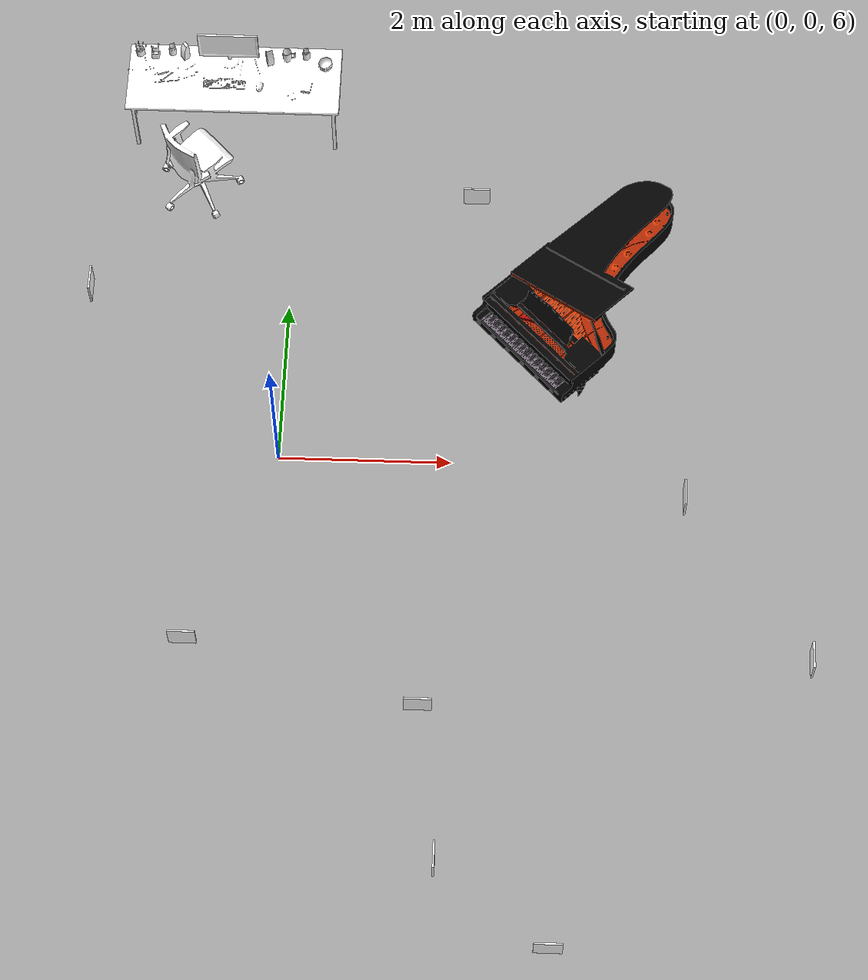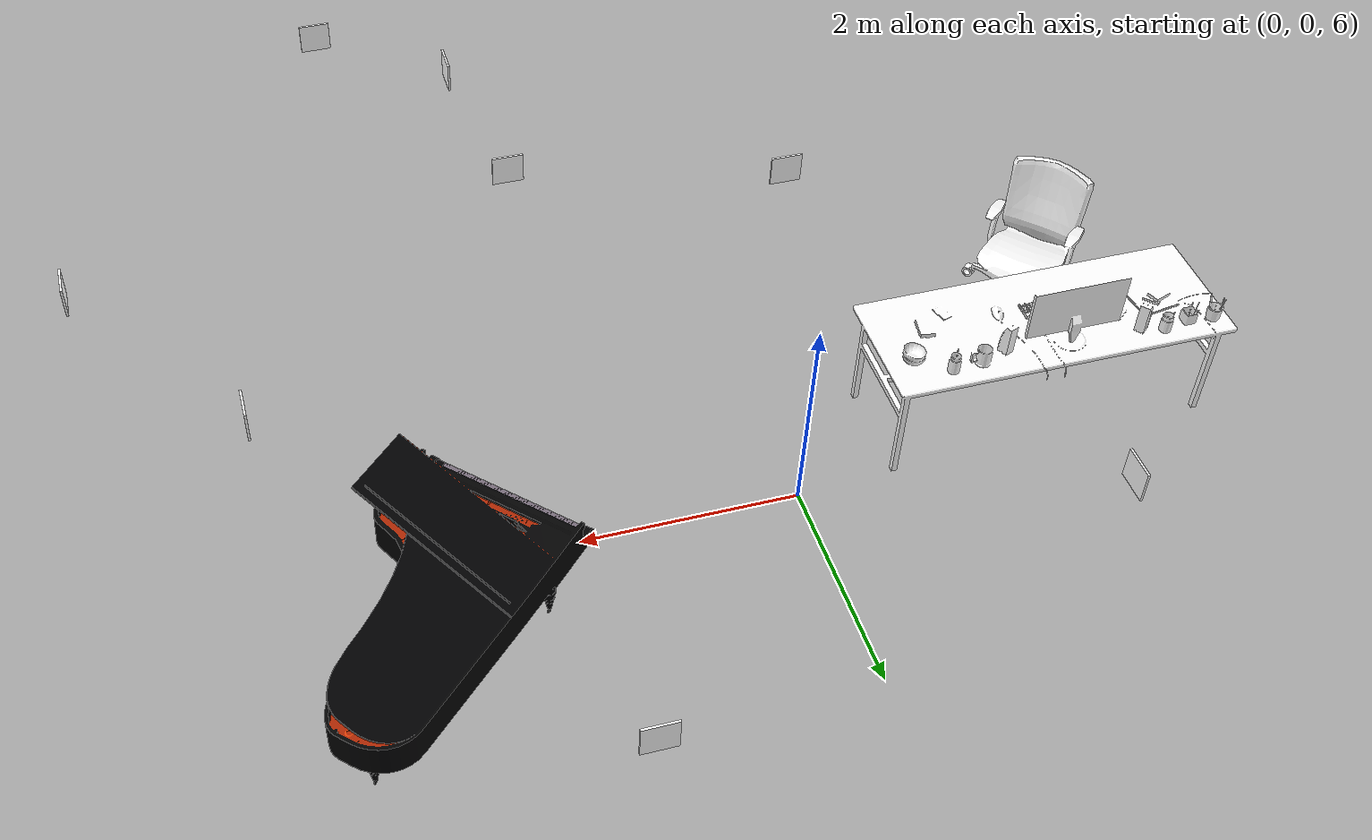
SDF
<sdf version="1.9">
 <world name="default">
  <physics name="1ms" type="ignored">
   <dart><collision_detector>bullet</collision_detector></dart>
   <max_step_size>0.001</max_step_size>
   <real_time_factor>1.0</real_time_factor>
  </physics>
  <plugin filename="gz-sim-physics-system" name="gz::sim::systems::Physics"/>
  <plugin filename="gz-sim-sensors-system" name="gz::sim::systems::Sensors">
   <render_engine>ogre2</render_engine>
  </plugin>
  <plugin filename="gz-sim-user-commands-system" name="gz::sim::systems::UserCommands"/>
  <plugin filename="gz-sim-scene-broadcaster-system" name="gz::sim::systems::SceneBroadcaster"/>
  <plugin filename="gz-sim-buoyancy-system" name="gz::sim::systems::Buoyancy">
   <graded_buoyancy>
    <default_density>1000</default_density>
    <density_change><above_depth>0</above_depth><density>1</density></density_change>
   </graded_buoyancy>
   <enable>Tethys</enable>
  </plugin>
  <plugin filename="gz-sim-dvl-system" name="gz::sim::systems::DopplerVelocityLogSystem"/>
  <gravity>0 0 -9.8</gravity>
  <scene><ambient>1 1 1</ambient><grid>false</grid></scene>
  <light type="directional" name="sun">
   <pose>0 0 20 -1.3 0 0.5</pose>
   <diffuse>0.8 0.8 0.8 1</diffuse>
   <specular>0.01 0.01 0.01 1</specular>
   <intensity>2</intensity>
   <visualize>false</visualize>
  </light>
  <light type="point" name="point_light">
   <pose>0.73 0.09 8.77 0 0 0</pose>
   <diffuse>1 1 1 1</diffuse>
   <specular>.01 .01 .01 1</specular>
   <attenuation>
    <range>20</range>
    <linear>0.2</linear>
    <constant>0.8</constant>
    <quadratic>0.01</quadratic>
   </attenuation>
   <visualize>false</visualize>
  </light>
  <light type="point" name="point_light_01">
   <pose>3.482 -4.28 8.87 0 0 0</pose>
   <diffuse>1 1 1 1</diffuse>
   <specular>0.01 0.01 0.01 1</specular>
   <attenuation>
    <range>10</range>
    <linear>0.5</linear>
    <constant>0.8</constant>
    <quadratic>0.001</quadratic>
   </attenuation>
   <cast_shadows>false</cast_shadows>
   <visualize>false</visualize>
  </light>
  <light type="point" name="point_light_02">
   <pose>0.13 0.46 11.60 0 0 0</pose>
   <diffuse>1 1 1 1</diffuse>
   <specular>0.01 0.01 0.01 1</specular>
   <attenuation>
    <range>10</range>
    <linear>0.2</linear>
    <constant>0.5</constant>
    <quadratic>0.001</quadratic>
   </attenuation>
   <cast_shadows>false</cast_shadows>
   <visualize>false</visualize>
  </light>
  <light type="point" name="point_light_03">
   <pose>4.27 -1.27 11.21 0 0 0</pose>
   <diffuse>1 1 1 1</diffuse>
   <specular>0.01 0.01 0.01 1</specular>
   <attenuation>
    <range>10</range>
    <linear>0.5</linear>
    <constant>0.8</constant>
    <quadratic>0.001</quadratic>
   </attenuation>
   <cast_shadows>false</cast_shadows>
   <visualize>false</visualize>
  </light>
  <light type="point" name="point_light_04">
   <pose>-0.31 -3.78 8.61 0 0 0</pose>
   <diffuse>1 1 1 1</diffuse>
   <specular>.01 .01 .01 1</specular>
   <attenuation>
    <range>10</range>
    <linear>0.5</linear>
    <constant>0.8</constant>
    <quadratic>0.001</quadratic>
   </attenuation>
   <cast_shadows>false</cast_shadows>
   <visualize>false</visualize>
  </light>
  <include><pose>-0.39 2.31 9.48 0 0 -1.57</pose><name>Desk</name><uri>model://Desk</uri></include>
  <include>
   <pose>-0.74 1.45 9.48 0 0 -0.81</pose>
   <name>Office_Chair</name>
   <uri>model://Office_Chair</uri>
  </include>
  <include><pose>2.98 0.85 6.91 0 0 -2.37</pose><name>Piano</name><uri>model://Piano</uri></include>
  <include><name>posAprilTags</name><uri>model://posAprilTags</uri></include>
  <model name="boundary">
   <static>true</static>
   <link name="link">
    <collision name="x">
     <pose>3000 0 0 0 0 0</pose>
     <geometry><box><size>1 6000 6000</size></box></geometry>
    </collision>
    <collision name="y">
     <pose>0 3000 0 0 0 0</pose>
     <geometry><box><size>6000 1 6000</size></box></geometry>
    </collision>
    <collision name="x_neg">
     <pose>-3000 0 0 0 0 0</pose>
     <geometry><box><size>1 6000 6000</size></box></geometry>
    </collision>
    <collision name="y_neg">
     <pose>0 -3000 0 0 0 0</pose>
     <geometry><box><size>6000 1 6000</size></box></geometry>
    </collision>
    <collision name="bottom">
     <pose>0 0 -3000 0 0 0</pose>
     <geometry><box><size>6000 6000 1</size></box></geometry>
    </collision>
   </link>
  </model>
 </world>
</sdf>

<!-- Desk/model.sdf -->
<sdf version="1.6">
  <model name="Desk">
    <static>true</static>
    <link name="base_link">
      <visual name="visual">
        <geometry>
          <mesh>
            <uri>meshes/desk.dae</uri>
          </mesh>
        </geometry>
        <material>
          <diffuse>1.0 1.0 1.0</diffuse>
          <specular>1.0 1.0 1.0</specular>
          <pbr>
            <metal>
              <albedo_map>materials/textures/Desk_Albedo.png</albedo_map>
              <normal_map>materials/textures/Desk_Normal.png</normal_map>
              <roughness_map>materials/textures/Desk_Roughness.png</roughness_map>
            </metal>
          </pbr>
        </material>
      </visual>
      <collision name="Box001">
        <pose>0.0 0.0 0.750208 0.0 0.0 0.0</pose>
        <geometry>
          <box>
            <size>0.8325 2.24977 0.0336458</size>
          </box>
        </geometry>
      </collision>
      <collision name="Box002">
        <pose>0.331174 -1.05803 0.372493 0.0 0.0 0.0</pose>
        <geometry>
          <box>
            <size>0.035625 0.035625 0.744987</size>
          </box>
        </geometry>
      </collision>
      <collision name="Box003">
        <pose>0.331174 1.05803 0.372493 0.0 0.0 0.0</pose>
        <geometry>
          <box>
            <size>0.035625 0.035625 0.744987</size>
          </box>
        </geometry>
      </collision>
      <collision name="Box004">
        <pose>-0.331174 1.05803 0.372493 0.0 0.0 0.0</pose>
        <geometry>
          <box>
            <size>0.035625 0.035625 0.744987</size>
          </box>
        </geometry>
      </collision>
      <collision name="Box005">
        <pose>-0.331174 -1.05803 0.372493 0.0 0.0 0.0</pose>
        <geometry>
          <box>
            <size>0.035625 0.035625 0.744987</size>
          </box>
        </geometry>
      </collision>
      <collision name="Box006">
        <pose>0.000344962 -1.05803 0.485212 0.0 1.5708 0.0</pose>
        <geometry>
          <box>
            <size>0.035625 0.035625 0.663038</size>
          </box>
        </geometry>
      </collision>
      <collision name="Box007">
        <pose>0.000344962 1.05803 0.485212 0.0 1.5708 0.0</pose>
        <geometry>
          <box>
            <size>0.035625 0.035625 0.663038</size>
          </box>
        </geometry>
      </collision>
      <collision name="Box008">
        <pose>0.0 -0.00048697 0.485212 -1.5708 1.5708 0.0</pose>
        <geometry>
          <box>
            <size>0.035625 0.035625 2.11509</size>
          </box>
        </geometry>
      </collision>
      <collision name="Box009">
        <pose>0.331174 -0.000626326 0.715061 -1.5708 0.0 0.0</pose>
        <geometry>
          <box>
            <size>0.035625 0.035625 2.11481</size>
          </box>
        </geometry>
      </collision>
      <collision name="Box010">
        <pose>-0.331174 -0.000626326 0.715061 -1.5708 0.0 0.0</pose>
        <geometry>
          <box>
            <size>0.035625 0.035625 2.11481</size>
          </box>
        </geometry>
      </collision>
      <collision name="Box011">
        <pose>0.0726977 -0.102337 0.768498 0.0 0.0872665 0.0</pose>
        <geometry>
          <box>
            <size>0.129877 0.447191 0.0501799</size>
          </box>
        </geometry>
      </collision>
      <collision name="Box012">
        <pose>-0.222452 -0.0605589 0.979005 0.0 0.0 0.0</pose>
        <geometry>
          <box>
            <size>0.0295176 0.63758 0.470188</size>
          </box>
        </geometry>
      </collision>
      <collision name="Box013">
        <pose>0.0989945 0.276996 0.782739 0.0 0.0 -0.174533</pose>
        <geometry>
          <box>
            <size>0.116594 0.0570796 0.036897</size>
          </box>
        </geometry>
      </collision>
    </link>
  </model>
</sdf>

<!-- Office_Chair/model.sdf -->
<sdf version="1.6">
  <model name="OfficeChair">
    <static>true</static>
    <link name="base_link">
      <visual name="visual">
        <geometry>
          <mesh>
            <uri>meshes/officechair.dae</uri>
          </mesh>
        </geometry>
        <material>
          <diffuse>1.0 1.0 1.0</diffuse>
          <specular>1.0 1.0 1.0</specular>
          <pbr>
            <metal>
              <albedo_map>materials/textures/OfficeChair_Albedo.png</albedo_map>
              <normal_map>materials/textures/OfficeChair_Normal.png</normal_map>
              <roughness_map>materials/textures/OfficeChair_Roughness.png</roughness_map>
              <metalness_map>materials/textures/OfficeChair_Metalness.png</metalness_map>
            </metal>
          </pbr>
        </material>
      </visual>
      <collision name="Box001">
        <pose>0.0 0.03962 0.46685 0.0872665 0.0 0.0</pose>
        <geometry>
          <box>
            <size>0.511249 0.578359 0.108987</size>
          </box>
        </geometry>
      </collision>
      <collision name="Box002">
        <pose>0.0 -0.200278 0.766385 -1.48353 0.0 0.0</pose>
        <geometry>
          <box>
            <size>0.511249 0.665113 0.108987</size>
          </box>
        </geometry>
      </collision>
      <collision name="Cylinder001">
        <pose>0.0 0.0 0.239577 0.0 0.0 0.0</pose>
        <geometry>
          <cylinder>
            <length>0.395591</length>
            <radius>0.0321281</radius>
          </cylinder>
        </geometry>
      </collision>
      <collision name="Cylinder002">
        <pose>0.406934 -0.124695 0.037183 1.5708 0.0 -0.0671651</pose>
        <geometry>
          <cylinder>
            <length>0.0584031</length>
            <radius>0.0379998</radius>
          </cylinder>
        </geometry>
      </collision>
      <collision name="Cylinder003">
        <pose>0.243918 0.348604 0.037183 1.5708 0.0 1.17814</pose>
        <geometry>
          <cylinder>
            <length>0.0584031</length>
            <radius>0.0379998</radius>
          </cylinder>
        </geometry>
      </collision>
      <collision name="Cylinder004">
        <pose>-0.255977 0.339873 0.037183 1.5708 0.0 2.44229</pose>
        <geometry>
          <cylinder>
            <length>0.0584031</length>
            <radius>0.0379998</radius>
          </cylinder>
        </geometry>
      </collision>
      <collision name="Cylinder005">
        <pose>-0.40242 -0.13893 0.037183 1.5708 0.0 -2.5742</pose>
        <geometry>
          <cylinder>
            <length>0.0584031</length>
            <radius>0.0379998</radius>
          </cylinder>
        </geometry>
      </collision>
      <collision name="Cylinder006">
        <pose>0.00739516 -0.425689 0.037183 1.5708 0.0 1.8213</pose>
        <geometry>
          <cylinder>
            <length>0.0584031</length>
            <radius>0.0379998</radius>
          </cylinder>
        </geometry>
      </collision>
      <collision name="Box003">
        <pose>0.0 -0.208233 0.12911 0.0699253 0.0 0.0</pose>
        <geometry>
          <box>
            <size>0.0504429 0.404478 0.0590608</size>
          </box>
        </geometry>
      </collision>
      <collision name="Box004">
        <pose>-0.198041 -0.0643475 0.12911 0.0699253 0.0 -1.25664</pose>
        <geometry>
          <box>
            <size>0.0504429 0.404478 0.0590608</size>
          </box>
        </geometry>
      </collision>
      <collision name="Box005">
        <pose>-0.122396 0.168464 0.12911 0.0699253 0.0 -2.51327</pose>
        <geometry>
          <box>
            <size>0.0504429 0.404478 0.0590608</size>
          </box>
        </geometry>
      </collision>
      <collision name="Box006">
        <pose>0.122396 0.168464 0.12911 0.0699253 0.0 2.51327</pose>
        <geometry>
          <box>
            <size>0.0504429 0.404478 0.0590608</size>
          </box>
        </geometry>
      </collision>
      <collision name="Box007">
        <pose>0.198041 -0.0643477 0.12911 0.0699253 0.0 1.25664</pose>
        <geometry>
          <box>
            <size>0.0504429 0.404478 0.0590608</size>
          </box>
        </geometry>
      </collision>
      <collision name="Box008">
        <pose>-0.275812 -0.0026205 0.741555 1.5708 0.139626 -1.5708</pose>
        <geometry>
          <box>
            <size>0.26452 0.0438992 0.0659291</size>
          </box>
        </geometry>
      </collision>
      <collision name="Box009">
        <pose>-0.273179 -0.0180064 0.599892 1.5708 0.139626 -1.5708</pose>
        <geometry>
          <box>
            <size>0.0661301 0.280955 0.0369203</size>
          </box>
        </geometry>
      </collision>
      <collision name="Box010">
        <pose>0.275965 -0.00262052 0.741555 1.5708 -0.139626 1.5708</pose>
        <geometry>
          <box>
            <size>0.26452 0.0438992 0.0659291</size>
          </box>
        </geometry>
      </collision>
      <collision name="Box011">
        <pose>0.27346 -0.0180064 0.599892 1.5708 -0.139626 1.5708</pose>
        <geometry>
          <box>
            <size>0.0661301 0.280955 0.0369203</size>
          </box>
        </geometry>
      </collision>
    </link>
  </model>
</sdf>

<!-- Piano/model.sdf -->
<sdf version="1.6">
  <model name="Piano">
    <static>true</static>
    <link name="base_link">
      <visual name="visual">
        <geometry>
          <mesh>
            <uri>meshes/piano.dae</uri>
          </mesh>
        </geometry>
      </visual>
      <collision name="Box001">
        <pose>0.243129 0.00788122 0.603422 0.0 0.0 0.0</pose>
        <geometry>
          <box>
            <size>0.287229 1.44324 0.144997</size>
          </box>
        </geometry>
      </collision>
      <collision name="Box002">
        <pose>0.0175615 0.00788122 0.695495 0.0 0.0 0.0</pose>
        <geometry>
          <box>
            <size>0.413609 1.44324 0.329144</size>
          </box>
        </geometry>
      </collision>
      <collision name="Box003">
        <pose>-0.392478 0.00788116 0.734841 0.0 0.0 0.0</pose>
        <geometry>
          <box>
            <size>0.413609 1.44324 0.329144</size>
          </box>
        </geometry>
      </collision>
      <collision name="Box004">
        <pose>-1.36447 -0.325266 0.734841 0.0 0.0 0.0</pose>
        <geometry>
          <box>
            <size>1.67512 0.793779 0.329144</size>
          </box>
        </geometry>
      </collision>
      <collision name="Box005">
        <pose>-0.803242 -0.111498 0.734841 0.0 0.0 0.444273</pose>
        <geometry>
          <box>
            <size>0.921315 0.627086 0.329144</size>
          </box>
        </geometry>
      </collision>
      <collision name="Box006">
        <pose>-0.0877448 -0.00134659 0.944505 2.01187 0.0 -1.5708</pose>
        <geometry>
          <box>
            <size>0.73488 0.268691 0.036744</size>
          </box>
        </geometry>
      </collision>
      <collision name="Box007">
        <pose>-0.488626 -0.0578904 1.18515 0.436548 0.0 0.0</pose>
        <geometry>
          <box>
            <size>0.588897 1.44324 0.052663</size>
          </box>
        </geometry>
      </collision>
      <collision name="Box008">
        <pose>-1.36447 -0.359794 1.04429 0.436548 0.0 0.0</pose>
        <geometry>
          <box>
            <size>1.67512 0.793779 0.0526631</size>
          </box>
        </geometry>
      </collision>
      <collision name="Box009">
        <pose>-0.803242 -0.166074 1.13467 0.398713 -0.182742 0.407253</pose>
        <geometry>
          <box>
            <size>0.921315 0.627086 0.0526631</size>
          </box>
        </geometry>
      </collision>
      <collision name="Box010">
        <pose>-0.00645127 0.0227667 0.283169 1.5708 0.0 -1.5708</pose>
        <geometry>
          <box>
            <size>0.268691 0.519009 0.0353184</size>
          </box>
        </geometry>
      </collision>
      <collision name="Box011">
        <pose>0.0450188 0.0232733 0.0405282 0.0 0.0 0.0</pose>
        <geometry>
          <box>
            <size>0.196833 0.240713 0.0358812</size>
          </box>
        </geometry>
      </collision>
      <collision name="Cylinder001">
        <pose>-0.0444827 -0.580177 0.27691 0.0 0.0 0.0</pose>
        <geometry>
          <cylinder>
            <length>0.553819</length>
            <radius>0.0438295</radius>
          </cylinder>
        </geometry>
      </collision>
      <collision name="Cylinder002">
        <pose>-0.0444827 0.607649 0.27691 0.0 0.0 0.0</pose>
        <geometry>
          <cylinder>
            <length>0.553819</length>
            <radius>0.0438295</radius>
          </cylinder>
        </geometry>
      </collision>
      <collision name="Cylinder003">
        <pose>-1.9561 -0.300735 0.27691 0.0 0.0 0.0</pose>
        <geometry>
          <cylinder>
            <length>0.553819</length>
            <radius>0.0438295</radius>
          </cylinder>
        </geometry>
      </collision>
    </link>
  </model>
</sdf>

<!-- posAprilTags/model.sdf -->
<sdf version="1.9">
  <model name="posAprilTags">

    <!-- fridge -->
    <model name="tag_0">
      <pose>1.75 -3.535 7.3 1.57079 1.57079 0</pose>
      <static>true</static>
      <link name="link">
        <visual name="visual">
          <geometry>
            <box>
              <size>0.3 0.3 0.02</size>
            </box>
          </geometry>
          <material>
            <diffuse>1 1 1 1</diffuse>
            <specular>0.4 0.4 0.4 1</specular>
            <pbr>
              <metal>
                <albedo_map>materials/textures/tag36_11_00000.png</albedo_map>
                <double_sided>true</double_sided>
              </metal>
            </pbr>
          </material>
        </visual>
      </link>
    </model>

    <!-- back glass door -->
    <model name="tag_1">
      <pose>2.2 2.835 7.3 1.57079 1.57079 0</pose>
      <static>true</static>
      <link name="link">
        <visual name="visual">
          <geometry>
            <box>
              <size>0.3 0.3 0.02</size>
            </box>
          </geometry>
          <material>
            <diffuse>1 1 1 1</diffuse>
            <specular>0.4 0.4 0.4 1</specular>
            <pbr>
              <metal>
                <albedo_map>materials/textures/tag36_11_00001.png</albedo_map>
                <double_sided>true</double_sided>
              </metal>
            </pbr>
          </material>
        </visual>
      </link>
    </model>

    <!-- window -->
    <model name="tag_2">
      <pose>5.935 -2.89 7.3 0 1.57079 0</pose>
      <static>true</static>
      <link name="link">
        <visual name="visual">
          <geometry>
            <box>
              <size>0.3 0.3 0.02</size>
            </box>
          </geometry>
          <material>
            <diffuse>1 1 1 1</diffuse>
            <specular>0.4 0.4 0.4 1</specular>
            <pbr>
              <metal>
                <albedo_map>materials/textures/tag36_11_00002.png</albedo_map>
                <double_sided>true</double_sided>
              </metal>
            </pbr>
          </material>
        </visual>
      </link>
    </model>

    <!-- kitchen -->
    <model name="tag_3">
      <pose>3.17 -6.14 7.3 1.57079 1.57079 0</pose>
      <static>true</static>
      <link name="link">
        <visual name="visual">
          <geometry>
            <box>
              <size>0.3 0.3 0.02</size>
            </box>
          </geometry>
          <material>
            <diffuse>1 1 1 1</diffuse>
            <specular>0.4 0.4 0.4 1</specular>
            <pbr>
              <metal>
                <albedo_map>materials/textures/tag36_11_00003.png</albedo_map>
                <double_sided>true</double_sided>
              </metal>
            </pbr>
          </material>
        </visual>
      </link>
    </model>

    <!-- back door -->
    <model name="tag_4">
      <pose>-2.18 1.5 7.3 0 1.57079 0</pose>
      <static>true</static>
      <link name="link">
        <visual name="visual">
          <geometry>
            <box>
              <size>0.3 0.3 0.02</size>
            </box>
          </geometry>
          <material>
            <diffuse>1 1 1 1</diffuse>
            <specular>0.4 0.4 0.4 1</specular>
            <pbr>
              <metal>
                <albedo_map>materials/textures/tag36_11_00004.png</albedo_map>
                <double_sided>true</double_sided>
              </metal>
            </pbr>
          </material>
        </visual>
      </link>
    </model>

    <!-- piano -->
    <model name="tag_5">
      <pose>4.59 -1 7.3 0 1.57079 0</pose>
      <static>true</static>
      <link name="link">
        <visual name="visual">
          <geometry>
            <box>
              <size>0.3 0.3 0.02</size>
            </box>
          </geometry>
          <material>
            <diffuse>1 1 1 1</diffuse>
            <specular>0.4 0.4 0.4 1</specular>
            <pbr>
              <metal>
                <albedo_map>materials/textures/tag36_11_00005.png</albedo_map>
                <double_sided>true</double_sided>
              </metal>
            </pbr>
          </material>
        </visual>
      </link>
    </model>

    <!-- front door -->
    <model name="tag_6">
      <pose>-0.8 -2.85 7.3 1.57079 1.57079 0</pose>
      <static>true</static>
      <link name="link">
        <visual name="visual">
          <geometry>
            <box>
              <size>0.3 0.3 0.02</size>
            </box>
          </geometry>
          <material>
            <diffuse>1 1 1 1</diffuse>
            <specular>0.4 0.4 0.4 1</specular>
            <pbr>
              <metal>
                <albedo_map>materials/textures/tag36_11_00006.png</albedo_map>
                <double_sided>true</double_sided>
              </metal>
            </pbr>
          </material>
        </visual>
      </link>
    </model>

    <model name="tag_7">
      <pose>1.98 -5.23 7.3 0 1.57079 0</pose>
      <static>true</static>
      <link name="link">
        <visual name="visual">
          <geometry>
            <box>
              <size>0.3 0.3 0.02</size>
            </box>
          </geometry>
          <material>
            <diffuse>1 1 1 1</diffuse>
            <specular>0.4 0.4 0.4 1</specular>
            <pbr>
              <metal>
                <albedo_map>materials/textures/tag36_11_00007.png</albedo_map>
                <double_sided>true</double_sided>
              </metal>
            </pbr>
          </material>
        </visual>
      </link>
    </model>

  </model>
</sdf>
